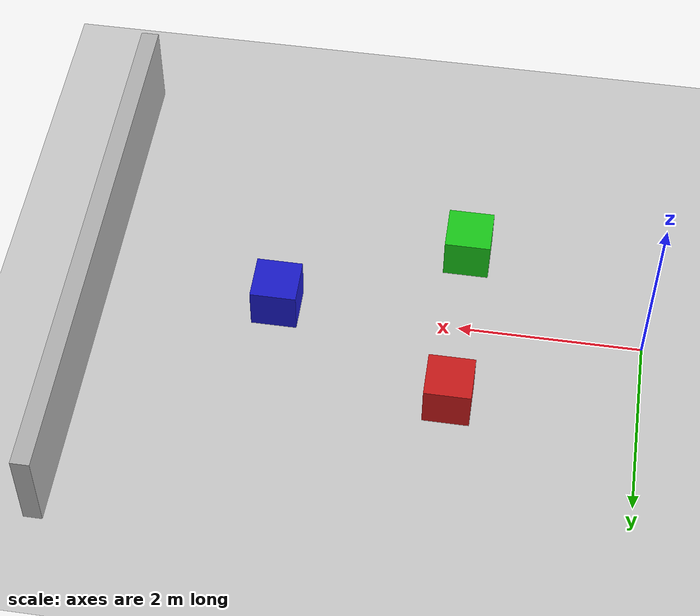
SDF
<?xml version="1.0" ?>
<sdf version="1.6">
  <world name="classroom">

    <physics type="ode">
      <max_step_size>0.001</max_step_size>
      <real_time_factor>1.0</real_time_factor>
    </physics>

    <include><uri>model://sun</uri></include>
    <include><uri>model://ground_plane</uri></include>

    <model name="obstacle_red">
      <pose>2.0 1.0 0.25 0 0 0</pose>
      <static>true</static>
      <link name="link">
        <collision name="collision">
          <geometry><box><size>0.5 0.5 0.5</size></box></geometry>
        </collision>
        <visual name="visual">
          <geometry><box><size>0.5 0.5 0.5</size></box></geometry>
          <material>
            <ambient>0.8 0.1 0.1 1</ambient>
            <diffuse>0.8 0.1 0.1 1</diffuse>
          </material>
        </visual>
      </link>
    </model>

    <model name="obstacle_green">
      <pose>2.0 -1.0 0.25 0 0 0</pose>
      <static>true</static>
      <link name="link">
        <collision name="collision">
          <geometry><box><size>0.5 0.5 0.5</size></box></geometry>
        </collision>
        <visual name="visual">
          <geometry><box><size>0.5 0.5 0.5</size></box></geometry>
          <material>
            <ambient>0.1 0.8 0.1 1</ambient>
            <diffuse>0.1 0.8 0.1 1</diffuse>
          </material>
        </visual>
      </link>
    </model>

    <model name="obstacle_blue">
      <pose>4.0 0.0 0.25 0 0 0</pose>
      <static>true</static>
      <link name="link">
        <collision name="collision">
          <geometry><box><size>0.5 0.5 0.5</size></box></geometry>
        </collision>
        <visual name="visual">
          <geometry><box><size>0.5 0.5 0.5</size></box></geometry>
          <material>
            <ambient>0.1 0.1 0.8 1</ambient>
            <diffuse>0.1 0.1 0.8 1</diffuse>
          </material>
        </visual>
      </link>
    </model>

    <model name="wall_back">
      <pose>6.0 0.0 0.5 0 0 0</pose>
      <static>true</static>
      <link name="link">
        <collision name="collision">
          <geometry><box><size>0.2 6.0 1.0</size></box></geometry>
        </collision>
        <visual name="visual">
          <geometry><box><size>0.2 6.0 1.0</size></box></geometry>
          <material>
            <ambient>0.7 0.7 0.7 1</ambient>
            <diffuse>0.7 0.7 0.7 1</diffuse>
          </material>
        </visual>
      </link>
    </model>

  </world>
</sdf>
